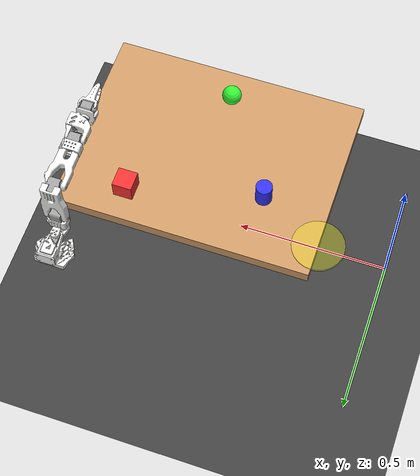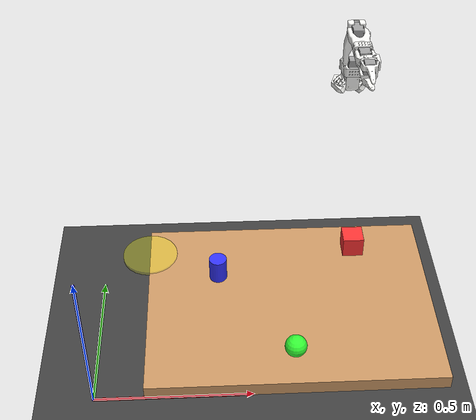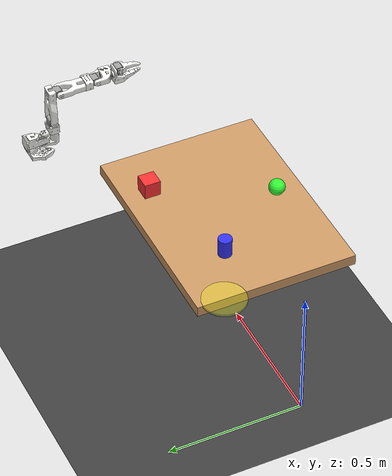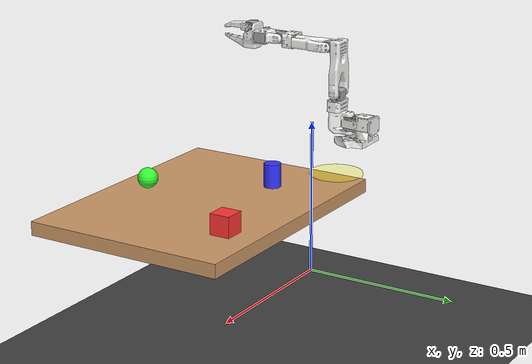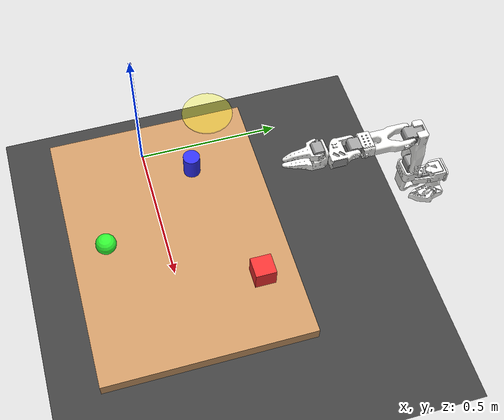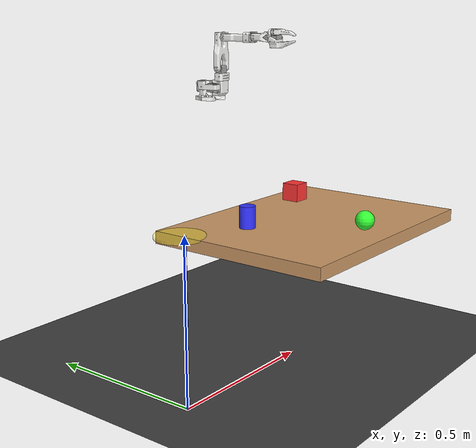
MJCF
<?xml version="1.0" ?>
<mujoco model="so101_custom_scene">
    <!-- 包含你修改过的机械臂模型 -->
    <include file="so101_new_calib.xml" />

    <compiler angle="radian" autolimits="true" />

    <option timestep="0.002" integrator="implicitfast" solver="PGS" gravity="0 0 -9.82" cone="elliptic" />

    <!-- 统计信息（用于自动调整视角） -->
    <statistic center="0.5 0.5 0.8" extent="1.5" meansize="0.1" />

    <!-- 可视化设置 -->
    <visual>
        <headlight diffuse="0.7 0.7 0.7" ambient="0.3 0.3 0.3" specular="0.1 0.1 0.1" />
        <rgba haze="0.15 0.25 0.35 1" />
        <global azimuth="30" elevation="-25" offheight="800" offwidth="800"/>
    </visual>

    <asset>
        <!-- 天空盒 -->
        <texture type="skybox" builtin="gradient" rgb1="0.4 0.6 0.8" rgb2="0.1 0.1 0.1"
                 width="512" height="3072" />

        <!-- 地面纹理 -->
        <texture type="2d" name="groundplane" builtin="checker" mark="edge"
                 rgb1="0.3 0.3 0.3" rgb2="0.2 0.2 0.2" markrgb="0.8 0.8 0.8"
                 width="300" height="300" />
        <material name="groundplane" texture="groundplane" texuniform="true"
                  texrepeat="8 8" reflectance="0.1" />

        <!-- 桌面材质 -->
        <material name="table_mat" rgba="0.8 0.6 0.4 1" />

        <!-- 物体材质 -->
        <material name="red_mat" rgba="1 0.2 0.2 1" />
        <material name="blue_mat" rgba="0.2 0.2 1 1" />
        <material name="green_mat" rgba="0.2 1 0.2 1" />
    </asset>

    <worldbody>
        <!-- 主光源 -->
        <light pos="1 1 2" dir="0 0 -1" directional="true" diffuse="0.8 0.8 0.8" />
        <!-- 辅助光源 -->
        <light pos="-1 -1 1.5" dir="0 0 -1" directional="true" diffuse="0.3 0.3 0.3" />

        <!-- 地面 -->
        <geom name="floor" size="0 0 0.02" type="plane" material="groundplane" />

        <!-- 参考坐标轴 -->
        <geom name="x-axis" group="2" type="cylinder" contype="0" conaffinity="0"
              fromto="0 0 0 0.5 0 0" size="0.005" rgba="1 0 0 0.8" />
        <geom name="y-axis" group="2" type="cylinder" contype="0" conaffinity="0"
              fromto="0 0 0 0 0.5 0" size="0.005" rgba="0 1 0 0.8" />
        <geom name="z-axis" group="2" type="cylinder" contype="0" conaffinity="0"
              fromto="0 0 0 0 0 0.5" size="0.005" rgba="0 0 1 0.8" />

        <!-- 工作台 -->
        <body name="work_table" pos="0.6 0 0.4">
            <geom name="work_table" type="box" size="0.4 0.3 0.02" material="table_mat" />
        </body>

        <!-- 测试物体 -->
        <body name="red_box" pos="0.8 0.2 0.45">
            <joint name="red_box_joint" type="free" />
            <geom name="red_box" type="box" size="0.03 0.03 0.03" material="red_mat" mass="0.1" />
        </body>

        <body name="blue_cylinder" pos="0.4 0.1 0.45">
            <joint name="blue_cylinder_joint" type="free" />
            <geom name="blue_cylinder" type="cylinder" size="0.025 0.04" material="blue_mat" mass="0.08" />
        </body>

        <body name="green_sphere" pos="0.6 -0.2 0.45">
            <joint name="green_sphere_joint" type="free" />
            <geom name="green_sphere" type="sphere" size="0.03" material="green_mat" mass="0.06" />
        </body>

        <!-- 目标区域标记 -->
        <body name="target_zone" pos="0.2 0.2 0.42">
            <geom name="target_zone" type="cylinder" size="0.08 0.005"
                  rgba="1 1 0 0.3" contype="0" conaffinity="0" />
        </body>

        <!-- 摄像机位置 -->
        <camera name="overview" pos="1.2 0.8 1.0" xyaxes="0 -1 0 0.8 0 0.6" mode="fixed" />
        <camera name="side_view" pos="0 1.0 0.6" xyaxes="-1 0 0 0 0 1" mode="fixed" />
        <camera name="top_view" pos="0.5 0 1.5" xyaxes="1 0 0 0 1 0" mode="fixed" />
    </worldbody>
</mujoco>

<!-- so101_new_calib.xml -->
<!-- Generated using onshape-to-robot -->
<!-- Onshape https://cad.onshape.com/documents/7715cc284bb430fe6dab4ffd/w/4fd0791b683777b02f8d975a/e/826c553ede3b7592eb9ca800 -->
<mujoco model="so101_new_calib">
  <compiler angle="radian" meshdir="assets" autolimits="true"/>
  <default>
    <default class="so101_new_calib">
      <joint frictionloss="0.1" armature="0.005"/>
      <position kp="50" dampratio="1"/>
      <default class="visual">
        <geom type="mesh" contype="0" conaffinity="0" group="2"/>
      </default>
      <default class="collision">
        <geom group="3"/>
      </default>
    </default>
  </default>
  <!-- Additional joints_properties.xml -->
  <default>
    <default class="sts3215">
      <geom contype="0" conaffinity="0"/>
      <joint damping="0.60" frictionloss="0.052" armature="0.028"/>
      <position kp="17.8" kv="0.0" forcerange="-3.35 3.35"/>
    </default>
    <default class="backlash">
      <!-- +/- 0.5° of backlash -->
      <joint damping="0.01" frictionloss="0" armature="0.01" limited="true" range="-0.008726646259971648 0.008726646259971648"/>
    </default>
  </default>
  <worldbody>
    <!-- Link base -->
    <!-- Definition position and orientation of lerobot -->
    <body name="base" pos="0.8 0.6 0.71" quat="1 0 0 0" childclass="so101_new_calib">
    <!-- make base can be changed  -->
    <joint type="free"/>
      <inertial pos="0.020739 0.00204287 0.065966" mass="0.147" fullinertia="0.000136117 0.000114686 0.000130364 4.59787e-07 9.75275e-08 -4.97151e-06"/>
      <!-- Part base_motor_holder_so101_v1 -->
      <geom type="mesh" class="visual" pos="0.0206915 0.0221255 0.0300817" quat="0.707107 0.707107 7.85046e-16 8.68107e-16" mesh="base_motor_holder_so101_v1" material="base_motor_holder_so101_v1_material"/>
      <!-- Part base_so101_v2 -->
      <geom type="mesh" class="visual" pos="0.0207909 0.0221255 0.0300817" quat="0.707107 0.707107 -0 -0" mesh="base_so101_v2" material="base_so101_v2_material"/>
      <!-- Part sts3215_03a_v1 -->
      <geom type="mesh" class="visual" pos="0.0207909 -0.0105745 0.0761817" quat="0.707107 -7.69919e-16 8.95976e-16 -0.707107" mesh="sts3215_03a_v1" material="sts3215_03a_v1_material"/>
      <!-- Part waveshare_mounting_plate_so101_v2 -->
      <geom type="mesh" class="visual" pos="0.0205915 0.0467435 0.0798817" quat="0.707107 0.707107 -3.34318e-15 5.1276e-15" mesh="waveshare_mounting_plate_so101_v2" material="waveshare_mounting_plate_so101_v2_material"/>
      <!-- Frame base -->
      <site group="3" name="base" pos="0.020791 0.0157608 0.0324817" quat="0 1 0 0"/>
      <!-- Link shoulder -->
      <body name="shoulder" pos="0.0207909 -0.0230745 0.0948817" quat="7.88629e-16 -0.707107 -0.707107 7.69003e-16">
        <!-- Joint from base to shoulder -->
        <joint axis="0 0 1" name="1" type="hinge" range="-1.9198621771937616 1.9198621771937634" class="sts3215"/>
        <inertial pos="-0.0307604 -1.66727e-05 -0.0252713" mass="0.100006" fullinertia="8.3759e-05 8.10403e-05 2.39783e-05 7.55525e-08 -1.16342e-06 1.54663e-07"/>
        <!-- Part sts3215_03a_v1_2 -->
        <geom type="mesh" class="visual" pos="-0.0303992 0.000422241 -0.0417" quat="0.5 0.5 0.5 -0.5" mesh="sts3215_03a_v1" material="sts3215_03a_v1_material"/>
        <geom type="mesh" class="collision" pos="-0.0303992 0.000422241 -0.0417" quat="0.5 0.5 0.5 -0.5" mesh="sts3215_03a_v1" material="sts3215_03a_v1_material"/>
        <!-- Part motor_holder_so101_base_v1 -->
        <geom type="mesh" class="visual" pos="-0.0675992 -0.000177759 0.0158499" quat="0.5 0.5 -0.5 0.5" mesh="motor_holder_so101_base_v1" material="motor_holder_so101_base_v1_material"/>
        <geom type="mesh" class="collision" pos="-0.0675992 -0.000177759 0.0158499" quat="0.5 0.5 -0.5 0.5" mesh="motor_holder_so101_base_v1" material="motor_holder_so101_base_v1_material"/>
        <!-- Part rotation_pitch_so101_v1 -->
        <geom type="mesh" class="visual" pos="0.0122008 2.22413e-05 0.0464" quat="0.707107 -0.707107 0 0" mesh="rotation_pitch_so101_v1" material="rotation_pitch_so101_v1_material"/>
        <geom type="mesh" class="collision" pos="0.0122008 2.22413e-05 0.0464" quat="0.707107 -0.707107 0 0" mesh="rotation_pitch_so101_v1" material="rotation_pitch_so101_v1_material"/>
        <!-- Link upper_arm -->
        <body name="upper_arm" pos="-0.0303992 -0.0182778 -0.0542" quat="0.5 -0.5 -0.5 -0.5">
          <!-- Joint from shoulder to upper_arm -->
          <joint axis="0 0 1" name="2" type="hinge" range="-1.7453292519943269 1.7453292519943322" class="sts3215"/>
          <inertial pos="-0.0898471 -0.00838224 0.0184089" mass="0.103" fullinertia="4.08002e-05 0.000147318 0.000142487 -1.97819e-05 -4.03016e-08 8.97326e-09"/>
          <!-- Part sts3215_03a_v1_3 -->
          <geom type="mesh" class="visual" pos="-0.11257 -0.0155 0.0187" quat="4.31775e-16 -0.707107 0.707107 -2.94392e-16" mesh="sts3215_03a_v1" material="sts3215_03a_v1_material"/>
          <geom type="mesh" class="collision" pos="-0.11257 -0.0155 0.0187" quat="4.31775e-16 -0.707107 0.707107 -2.94392e-16" mesh="sts3215_03a_v1" material="sts3215_03a_v1_material"/>
          <!-- Part upper_arm_so101_v1 -->
          <geom type="mesh" class="visual" pos="-0.065085 0.012 0.0182" quat="0 1 0 0" mesh="upper_arm_so101_v1" material="upper_arm_so101_v1_material"/>
          <geom type="mesh" class="collision" pos="-0.065085 0.012 0.0182" quat="0 1 0 0" mesh="upper_arm_so101_v1" material="upper_arm_so101_v1_material"/>
          <!-- Link lower_arm -->
          <body name="lower_arm" pos="-0.11257 -0.028 2.46331e-16" quat="0.707107 -2.94392e-16 -3.85906e-16 0.707107">
            <!-- Joint from upper_arm to lower_arm -->
            <joint axis="0 0 1" name="3" type="hinge" range="-1.7453292519943295 1.5707963267948966" class="sts3215"/>
            <inertial pos="-0.0980701 0.00324376 0.0182831" mass="0.104" fullinertia="2.87438e-05 0.000159844 0.00014529 7.41152e-06 1.26409e-06 -4.90188e-08"/>
            <!-- Part under_arm_so101_v1 -->
            <geom type="mesh" class="visual" pos="-0.0648499 -0.032 0.0182" quat="0 1 0 0" mesh="under_arm_so101_v1" material="under_arm_so101_v1_material"/>
            <geom type="mesh" class="collision" pos="-0.0648499 -0.032 0.0182" quat="0 1 0 0" mesh="under_arm_so101_v1" material="under_arm_so101_v1_material"/>
            <!-- Part motor_holder_so101_wrist_v1 -->
            <geom type="mesh" class="visual" pos="-0.0648499 -0.032 0.018" quat="3.3891e-16 -1 -1.9186e-15 6.33174e-16" mesh="motor_holder_so101_wrist_v1" material="motor_holder_so101_wrist_v1_material"/>
            <geom type="mesh" class="collision" pos="-0.0648499 -0.032 0.018" quat="3.3891e-16 -1 -1.9186e-15 6.33174e-16" mesh="motor_holder_so101_wrist_v1" material="motor_holder_so101_wrist_v1_material"/>
            <!-- Part sts3215_03a_v1_4 -->
            <geom type="mesh" class="visual" pos="-0.1224 0.0052 0.0187" quat="8.32667e-16 -1.56949e-15 -1 5.55112e-16" mesh="sts3215_03a_v1" material="sts3215_03a_v1_material"/>
            <geom type="mesh" class="collision" pos="-0.1224 0.0052 0.0187" quat="8.32667e-16 -1.56949e-15 -1 5.55112e-16" mesh="sts3215_03a_v1" material="sts3215_03a_v1_material"/>
            <!-- Link wrist -->
            <body name="wrist" pos="-0.1349 0.0052 1.65232e-16" quat="0.707107 1.31614e-15 9.90601e-17 -0.707107">
              <!-- Joint from lower_arm to wrist -->
              <joint axis="0 0 1" name="4" type="hinge" range="-1.6580627969561903 1.658062781833036" class="sts3215"/>
              <inertial pos="-0.000103312 -0.0386143 0.0281156" mass="0.079" fullinertia="3.68263e-05 2.5391e-05 2.1e-05 1.7893e-08 -5.28128e-08 3.6412e-06"/>
              <!-- Part sts3215_03a_no_horn_v1 -->
              <geom type="mesh" class="visual" pos="5.55112e-17 -0.0424 0.0306" quat="0.5 0.5 0.5 -0.5" mesh="sts3215_03a_no_horn_v1" material="sts3215_03a_no_horn_v1_material"/>
              <geom type="mesh" class="collision" pos="5.55112e-17 -0.0424 0.0306" quat="0.5 0.5 0.5 -0.5" mesh="sts3215_03a_no_horn_v1" material="sts3215_03a_no_horn_v1_material"/>
              <!-- Part wrist_roll_pitch_so101_v2 -->
              <geom type="mesh" class="visual" pos="0 -0.028 0.0181" quat="0.5 -0.5 -0.5 -0.5" mesh="wrist_roll_pitch_so101_v2" material="wrist_roll_pitch_so101_v2_material"/>
              <geom type="mesh" class="collision" pos="0 -0.028 0.0181" quat="0.5 -0.5 -0.5 -0.5" mesh="wrist_roll_pitch_so101_v2" material="wrist_roll_pitch_so101_v2_material"/>
              <!-- Link gripper -->
              <body name="gripper" pos="0 -0.0611 0.0181" quat="3.31663e-08 -3.31663e-08 -0.707107 -0.707107">
                <!-- Joint from wrist to gripper -->
                <joint axis="0 0 1" name="5" type="hinge" range="-2.7925268969992407 2.7925267093826136" class="sts3215"/>
                <inertial pos="0.000213627 0.000245138 -0.025187" mass="0.087" fullinertia="2.75087e-05 4.33657e-05 3.45059e-05 -3.35241e-07 -5.7352e-06 -5.17847e-08"/>
                <!-- Part sts3215_03a_v1_5 -->
                <geom type="mesh" class="visual" pos="0.0077 0.0001 -0.0234" quat="0.707107 -0.707107 6.48145e-15 1.58472e-15" mesh="sts3215_03a_v1" material="sts3215_03a_v1_material"/>
                <geom type="mesh" class="collision" pos="0.0077 0.0001 -0.0234" quat="0.707107 -0.707107 6.48145e-15 1.58472e-15" mesh="sts3215_03a_v1" material="sts3215_03a_v1_material"/>
                <!-- Part wrist_roll_follower_so101_v1 -->
                <geom type="mesh" class="visual" pos="5.55112e-17 -0.000218214 0.000949706" quat="0 1 0 0" mesh="wrist_roll_follower_so101_v1" material="wrist_roll_follower_so101_v1_material"/>
                <geom type="mesh" class="collision" pos="5.55112e-17 -0.000218214 0.000949706" quat="0 1 0 0" mesh="wrist_roll_follower_so101_v1" material="wrist_roll_follower_so101_v1_material"/>
                <!-- Frame gripper -->
                <site group="3" name="gripper" pos="-0.0079 -0.000218121 -0.0981274" quat="0.5 -0.5 0.5 -0.5"/>
                <!-- Link moving_jaw_so101_v1 -->
                <body name="moving_jaw_so101_v1" pos="0.0202 0.0188 -0.0234" quat="0.707107 0.707107 1.47485e-15 -6.52758e-15">
                  <!-- Joint from gripper to moving_jaw_so101_v1 -->
                  <joint axis="0 0 1" name="6" type="hinge" range="-0.17453292519943295 1.7453292519943295" class="sts3215"/>
                  <inertial pos="-0.00157495 -0.0300244 0.0192755" mass="0.012" fullinertia="6.61427e-06 1.89032e-06 5.28738e-06 -3.19807e-07 -5.90717e-09 -1.09945e-07"/>
                  <!-- Part moving_jaw_so101_v1 -->
                  <geom type="mesh" class="visual" pos="-5.55112e-17 -1.94746e-17 0.0189" quat="1 -0 1.86338e-16 6.90343e-24" mesh="moving_jaw_so101_v1" material="moving_jaw_so101_v1_material"/>
                  <geom type="mesh" class="collision" pos="-5.55112e-17 -1.94746e-17 0.0189" quat="1 -0 1.86338e-16 6.90343e-24" mesh="moving_jaw_so101_v1" material="moving_jaw_so101_v1_material"/>
                </body>
              </body>
            </body>
          </body>
        </body>
      </body>
    </body>
  </worldbody>
  <asset>
    <mesh file="rotation_pitch_so101_v1.stl"/>
    <mesh file="moving_jaw_so101_v1.stl"/>
    <mesh file="sts3215_03a_v1.stl"/>
    <mesh file="motor_holder_so101_wrist_v1.stl"/>
    <mesh file="wrist_roll_follower_so101_v1.stl"/>
    <mesh file="base_so101_v2.stl"/>
    <mesh file="under_arm_so101_v1.stl"/>
    <mesh file="wrist_roll_pitch_so101_v2.stl"/>
    <mesh file="waveshare_mounting_plate_so101_v2.stl"/>
    <mesh file="sts3215_03a_no_horn_v1.stl"/>
    <mesh file="motor_holder_so101_base_v1.stl"/>
    <mesh file="base_motor_holder_so101_v1.stl"/>
    <mesh file="upper_arm_so101_v1.stl"/>
    <material name="base_motor_holder_so101_v1_material" rgba="0.964706 0.964706 0.952941 1"/>
    <material name="base_so101_v2_material" rgba="0.964706 0.964706 0.952941 1"/>
    <material name="sts3215_03a_v1_material" rgba="0.627451 0.627451 0.627451 1"/>
    <material name="waveshare_mounting_plate_so101_v2_material" rgba="0.964706 0.964706 0.952941 1"/>
    <material name="motor_holder_so101_base_v1_material" rgba="0.964706 0.964706 0.952941 1"/>
    <material name="rotation_pitch_so101_v1_material" rgba="0.964706 0.964706 0.952941 1"/>
    <material name="upper_arm_so101_v1_material" rgba="0.964706 0.964706 0.952941 1"/>
    <material name="under_arm_so101_v1_material" rgba="0.964706 0.964706 0.952941 1"/>
    <material name="motor_holder_so101_wrist_v1_material" rgba="0.964706 0.964706 0.952941 1"/>
    <material name="sts3215_03a_no_horn_v1_material" rgba="0.627451 0.627451 0.627451 1"/>
    <material name="wrist_roll_pitch_so101_v2_material" rgba="0.964706 0.964706 0.952941 1"/>
    <material name="wrist_roll_follower_so101_v1_material" rgba="0.964706 0.964706 0.952941 1"/>
    <material name="moving_jaw_so101_v1_material" rgba="0.964706 0.964706 0.952941 1"/>
  </asset>
  <actuator>
    <position class="sts3215" name="1" joint="1" inheritrange="1"/>
    <position class="sts3215" name="2" joint="2" inheritrange="1"/>
    <position class="sts3215" name="3" joint="3" inheritrange="1"/>
    <position class="sts3215" name="4" joint="4" inheritrange="1"/>
    <position class="sts3215" name="5" joint="5" inheritrange="1"/>
    <position class="sts3215" name="6" joint="6" inheritrange="1"/>
  </actuator>
  <equality/>
</mujoco>
